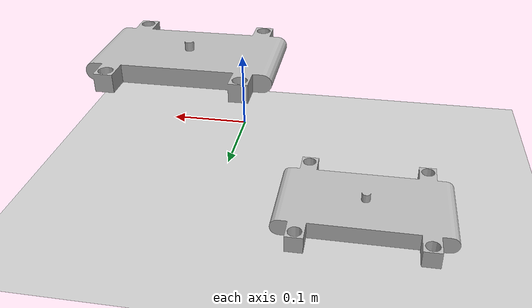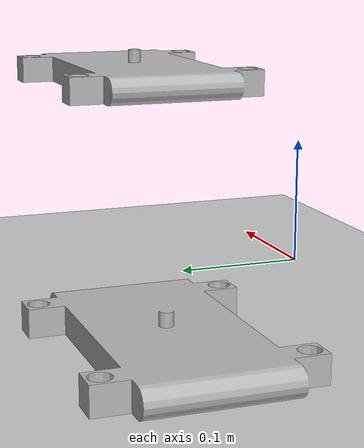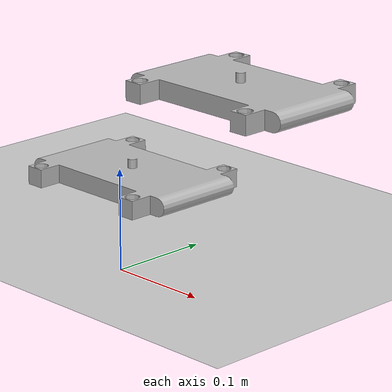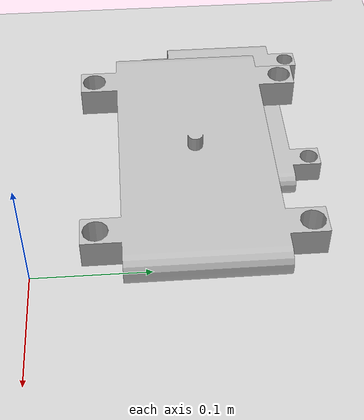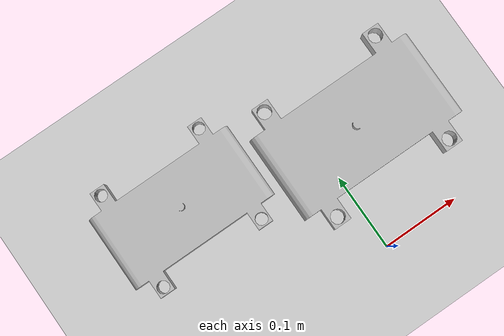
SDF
<sdf version="1.7">
 <world name="default">
  <light name="sun" type="directional">
   <pose>0 0 10 0 -0 0</pose>
   <diffuse>0.8 0.8 0.8 1</diffuse>
   <specular>0.2 0.2 0.2 1</specular>
   <attenuation>
    <range>1000</range>
    <constant>0.9</constant>
    <linear>0.01</linear>
    <quadratic>0.001</quadratic>
   </attenuation>
   <direction>-0.5 0.1 -0.9</direction>
   <spot><inner_angle>0</inner_angle><outer_angle>0</outer_angle><falloff>0</falloff></spot>
  </light>
  <model name="ground_plane">
   <static>1</static>
   <link name="link">
    <collision name="collision">
     <geometry><plane><normal>0 0 1</normal><size>100 100</size></plane></geometry>
     <surface><friction><ode><mu>100</mu><mu2>50</mu2></ode></friction></surface>
    </collision>
    <visual name="visual">
     <cast_shadows>0</cast_shadows>
     <geometry><plane><normal>0 0 1</normal><size>100 100</size></plane></geometry>
     <material>
      <script><uri>file://media/materials/scripts/gazebo.material</uri><name>Gazebo/Grey</name></script>
     </material>
    </visual>
   </link>
  </model>
  <gravity>0 0 -9.8</gravity>
  <magnetic_field>6e-06 2.3e-05 -4.2e-05</magnetic_field>
  <atmosphere type="adiabatic"/>
  <physics type="ode">
   <max_step_size>0.001</max_step_size>
   <real_time_factor>1</real_time_factor>
   <real_time_update_rate>1000</real_time_update_rate>
  </physics>
  <scene><ambient>0.4 0.4 0.4 1</ambient><background>0.7 0.7 0.7 1</background><shadows>1</shadows></scene>
  <spherical_coordinates>
   <surface_model>EARTH_WGS84</surface_model>
   <latitude_deg>0</latitude_deg>
   <longitude_deg>0</longitude_deg>
   <elevation>0</elevation>
   <heading_deg>0</heading_deg>
  </spherical_coordinates>
  <model name="box1">
   <link name="base_link">
    <inertial>
     <pose>0 0.065 0 0 -0 0</pose>
     <mass>77.22</mass>
     <inertia>
      <ixx>0.253539</ixx>
      <ixy>0</ixy>
      <ixz>6.9611e-17</ixz>
      <iyy>1.75354</iyy>
      <iyz>-7.44196e-18</iyz>
      <izz>1.7175</izz>
     </inertia>
    </inertial>
    <collision name="base_link_collision">
     <geometry><mesh><scale>1 1 1</scale><uri>model://box1/meshes/base_link.STL</uri></mesh></geometry>
    </collision>
    <visual name="base_link_visual">
     <geometry><mesh><scale>1 1 1</scale><uri>model://box1/meshes/base_link.STL</uri></mesh></geometry>
    </visual>
   </link>
   <pose>-0.175006 0.178 -7e-06 0 2.9e-05 0</pose>
  </model>
  <model name="cube">
   <link name="base_link">
    <inertial>
     <mass>0.024786</mass>
     <inertia>
      <ixx>3.7179e-06</ixx>
      <ixy>-2.2394e-23</ixy>
      <ixz>3.5989e-22</ixz>
      <iyy>3.7179e-06</iyy>
      <iyz>5.688e-39</iyz>
      <izz>3.7179e-06</izz>
     </inertia>
    </inertial>
    <collision name="base_link_collision">
     <geometry><mesh><scale>1 1 1</scale><uri>model://cube/meshes/base_link.STL</uri></mesh></geometry>
    </collision>
    <visual name="base_link_visual">
     <geometry><mesh><scale>1 1 1</scale><uri>model://cube/meshes/base_link.STL</uri></mesh></geometry>
    </visual>
   </link>
   <pose>0.02918 0.13001 0.144971 0 -0 0.000234</pose>
  </model>
 </world>
</sdf>
